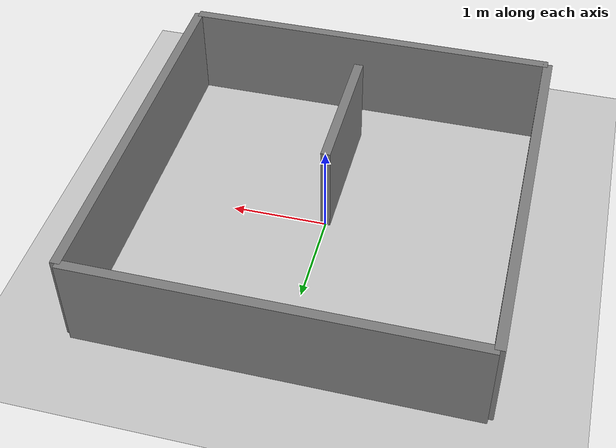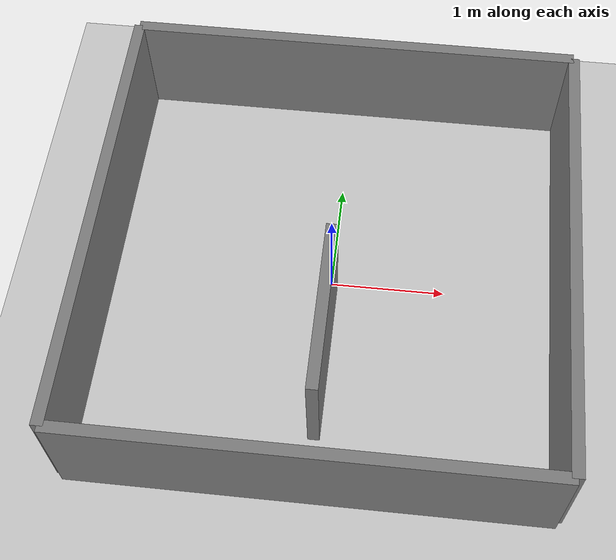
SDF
<?xml version="1.0" ?>
<!--
  Demo world with a widget displaying images coming from a camera sensor.
-->
<sdf version="1.8">
  <world name="mundoArUco">
    <physics name="1ms" type="ignored">
      <max_step_size>0.001</max_step_size>
      <real_time_factor>1.0</real_time_factor>
    </physics>

    <plugin
      filename="gz-sim-physics-system"
      name="gz::sim::systems::Physics">
    </plugin>
    <plugin
      filename="gz-sim-sensors-system"
      name="gz::sim::systems::Sensors">
      <render_engine>ogre2</render_engine>
    </plugin>
    <plugin
      filename="gz-sim-user-commands-system"
      name="gz::sim::systems::UserCommands">
    </plugin>
    <plugin
      filename="gz-sim-scene-broadcaster-system"
      name="gz::sim::systems::SceneBroadcaster">
    </plugin>

    <scene>
      <ambient>1.0 1.0 1.0</ambient>
      <background>0.8 0.8 0.8</background>
      <grid>true</grid>
    </scene>

    <gui fullscreen="0">

      <!-- 3D scene -->
      <plugin filename="MinimalScene" name="3D View">
        <gz-gui>
          <title>3D View</title>
          <property type="bool" key="showTitleBar">false</property>
          <property type="string" key="state">docked</property>
        </gz-gui>

        <engine>ogre2</engine>
        <scene>scene</scene>
        <ambient_light>0.4 0.4 0.4</ambient_light>
        <background_color>0.8 0.8 0.8</background_color>
        <camera_pose>-6 0 6 0 0.5 0</camera_pose>
      </plugin>

      <!-- Plugins that add functionality to the scene -->
      <plugin filename="EntityContextMenuPlugin" name="Entity context menu">
        <gz-gui>
          <property key="state" type="string">floating</property>
          <property key="width" type="double">5</property>
          <property key="height" type="double">5</property>
          <property key="showTitleBar" type="bool">false</property>
        </gz-gui>
      </plugin>
      <plugin filename="GzSceneManager" name="Scene Manager">
        <gz-gui>
          <property key="resizable" type="bool">false</property>
          <property key="width" type="double">5</property>
          <property key="height" type="double">5</property>
          <property key="state" type="string">floating</property>
          <property key="showTitleBar" type="bool">false</property>
        </gz-gui>
      </plugin>
      <plugin filename="InteractiveViewControl" name="Interactive view control">
        <gz-gui>
          <property key="resizable" type="bool">false</property>
          <property key="width" type="double">5</property>
          <property key="height" type="double">5</property>
          <property key="state" type="string">floating</property>
          <property key="showTitleBar" type="bool">false</property>
        </gz-gui>
      </plugin>
      <plugin filename="CameraTracking" name="Camera Tracking">
        <gz-gui>
          <property key="resizable" type="bool">false</property>
          <property key="width" type="double">5</property>
          <property key="height" type="double">5</property>
          <property key="state" type="string">floating</property>
          <property key="showTitleBar" type="bool">false</property>
        </gz-gui>
      </plugin>
      <!-- World control -->
      <plugin filename="WorldControl" name="World control">
        <gz-gui>
          <title>World control</title>
          <property type="bool" key="showTitleBar">false</property>
          <property type="bool" key="resizable">false</property>
          <property type="double" key="height">72</property>
          <property type="double" key="z">1</property>

          <property type="string" key="state">floating</property>
          <anchors target="3D View">
            <line own="left" target="left"/>
            <line own="bottom" target="bottom"/>
          </anchors>
        </gz-gui>

        <play_pause>true</play_pause>
        <step>true</step>
        <start_paused>false</start_paused>
        <use_event>true</use_event>

      </plugin>

      <!-- World statistics -->
      <plugin filename="WorldStats" name="World stats">
        <gz-gui>
          <title>World stats</title>
          <property type="bool" key="showTitleBar">false</property>
          <property type="bool" key="resizable">false</property>
          <property type="double" key="height">110</property>
          <property type="double" key="width">290</property>
          <property type="double" key="z">1</property>

          <property type="string" key="state">floating</property>
          <anchors target="3D View">
            <line own="right" target="right"/>
            <line own="bottom" target="bottom"/>
          </anchors>
        </gz-gui>

        <sim_time>true</sim_time>
        <real_time>true</real_time>
        <real_time_factor>true</real_time_factor>
        <iterations>true</iterations>
      </plugin>

      <!-- Inspector -->
      <plugin filename="ComponentInspector" name="Component inspector">
        <gz-gui>
          <property type="string" key="state">docked</property>
        </gz-gui>
      </plugin>

      <!-- Entity tree -->
      <plugin filename="EntityTree" name="Entity tree">
        <gz-gui>
          <property type="string" key="state">docked</property>
        </gz-gui>
      </plugin>
    </gui>

    <light type="directional" name="sun">
      <cast_shadows>true</cast_shadows>
      <pose>0 0 10 0 0 0</pose>
      <diffuse>0.8 0.8 0.8 1</diffuse>
      <specular>0.8 0.8 0.8 1</specular>
      <attenuation>
        <range>1000</range>
        <constant>0.9</constant>
        <linear>0.01</linear>
        <quadratic>0.001</quadratic>
      </attenuation>
      <direction>-0.5 0.1 -0.9</direction>
    </light>

    <model name="ground_plane">
      <static>true</static>
      <link name="link">
        <collision name="collision">
          <geometry>
            <plane>
              <normal>0 0 1</normal>
              <size>100 100</size>
            </plane>
          </geometry>
        </collision>
        <visual name="visual">
          <geometry>
            <plane>
              <normal>0 0 1</normal>
              <size>100 100</size>
            </plane>
          </geometry>
          <material>
            <ambient>0.8 0.8 0.8 1</ambient>
            <diffuse>0.8 0.8 0.8 1</diffuse>
            <specular>0.8 0.8 0.8 1</specular>
          </material>
        </visual>
      </link>
    </model>

    <model name="parede_obstaculo">
      <static>true</static>
      <pose>0 -0.75 0.5 0 0 1.57</pose>
      <link name="link">
        <collision name="collision">
          <geometry>
            <box>
              <size>1.5 0.1 1</size>
            </box>
          </geometry>
        </collision>
        <visual name="visual">
          <geometry>
            <box>
              <size>1.5 0.1 1</size>
            </box>
          </geometry>
          <material>
            <ambient>0.5 0.5 0.5 1</ambient>
          </material>
        </visual>
      </link>
    </model>

    <!-- Paredes do quadrado -->
    <model name="parede_norte">
      <static>true</static>
      <pose>0 2 0.5 0 0 0</pose> <!-- posição: centro em y=2, altura z=0.5 -->
      <link name="link">
        <collision name="collision">
          <geometry>
            <box>
              <size>4 0.1 1</size> <!-- comprimento 4, largura 0.1, altura 1 -->
            </box>
          </geometry>
        </collision>
        <visual name="visual">
          <geometry>
            <box>
              <size>4 0.1 1</size>
            </box>
          </geometry>
          <material>
            <ambient>0.5 0.5 0.5 1</ambient>
          </material>
        </visual>
      </link>
    </model>

    <model name="parede_sul">
      <static>true</static>
      <pose>0 -2 0.5 0 0 0</pose>
      <link name="link">
        <collision name="collision">
          <geometry>
            <box>
              <size>4 0.1 1</size>
            </box>
          </geometry>
        </collision>
        <visual name="visual">
          <geometry>
            <box>
              <size>4 0.1 1</size>
            </box>
          </geometry>
          <material>
            <ambient>0.5 0.5 0.5 1</ambient>
          </material>
        </visual>
      </link>
    </model>

    <model name="parede_leste">
      <static>true</static>
      <pose>2 0 0.5 0 0 1.57</pose>
      <link name="link">
        <collision name="collision">
          <geometry>
            <box>
              <size>4 0.1 1</size>
            </box>
          </geometry>
        </collision>
        <visual name="visual">
          <geometry>
            <box>
              <size>4 0.1 1</size>
            </box>
          </geometry>
          <material>
            <ambient>0.5 0.5 0.5 1</ambient>
          </material>
        </visual>
      </link>
    </model>

    <model name="parede_oeste">
      <static>true</static>
      <pose>-2 0 0.5 0 0 1.57</pose>
      <link name="link">
        <collision name="collision">
          <geometry>
            <box>
              <size>4 0.1 1</size>
            </box>
          </geometry>
        </collision>
        <visual name="visual">
          <geometry>
            <box>
              <size>4 0.1 1</size>
            </box>
          </geometry>
          <material>
            <ambient>0.5 0.5 0.5 1</ambient>
          </material>
        </visual>
      </link>
    </model>
  </world>
</sdf>
